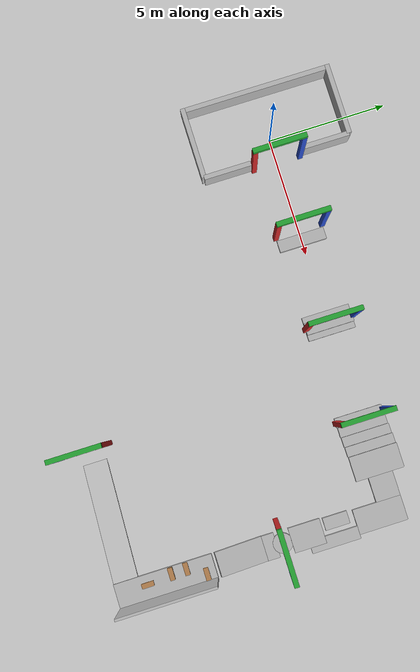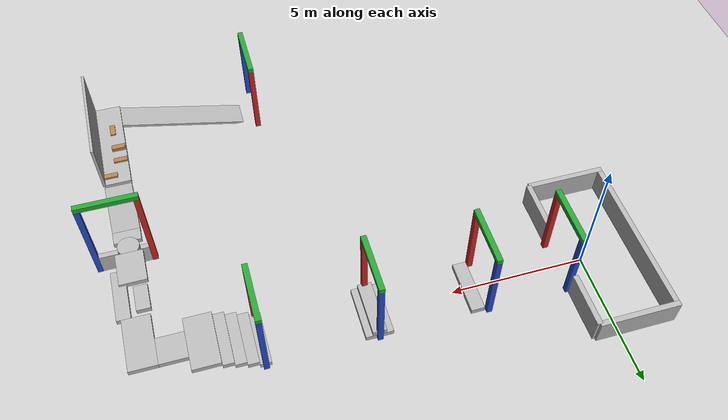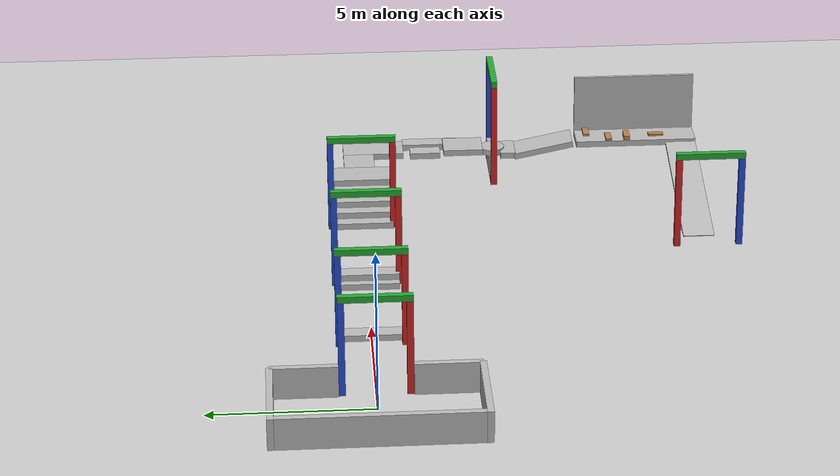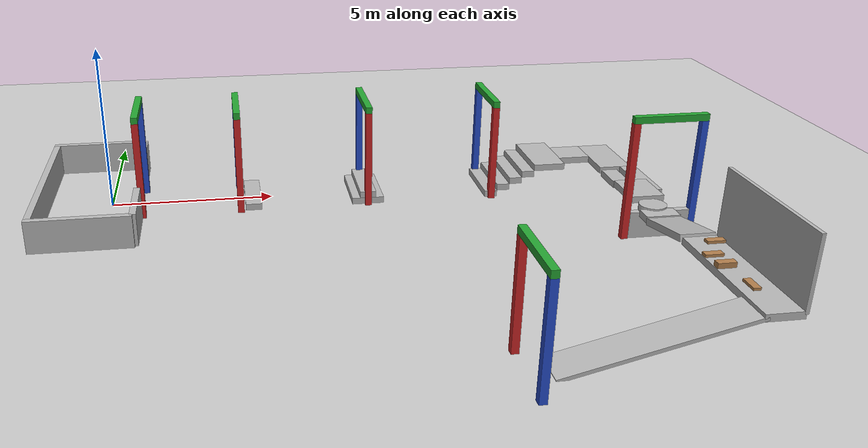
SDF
<?xml version='1.0'?>
<sdf version='1.3'>
  <world name='default'>
    <scene>
      <ambient>0.3 0.3 0.3 1.0</ambient>
    </scene>

    <!-- Light Source -->
    <light type="directional" name="sun">
      <cast_shadows>true</cast_shadows>

      <pose>0 0 100 0 0 0</pose>
      <diffuse>0.9 0.9 0.9 1</diffuse>
      <specular>0.1 0.1 0.1 1</specular>

      <attenuation>
        <range>1000</range>
        <constant>0.9</constant>
        <linear>0.01</linear>
        <quadratic>0.001</quadratic>
      </attenuation>

      <direction>-0.2 0.0 -1.0</direction>
    </light>

    <!-- Point Light Source -->
    <light type="point" name="light_bulb">
      <cast_shadows>false</cast_shadows>

      <pose>7.5 -7 5 0 0 0</pose>
      <diffuse>0.5 0.5 0.5 1</diffuse>
      <specular>0.0 0.0 0.0 1</specular>

      <attenuation>
        <range>80</range>
        <constant>0.9</constant>
        <linear>0.01</linear>
        <quadratic>0.001</quadratic>
      </attenuation>
    </light>

    <!-- A ground plane -->
    <include>
      <uri>model://ground_plane</uri>
      <pose>0 0 0 0 0 0</pose>
    </include>

    <model name="starting_pen">
      <static>true</static>
      <pose>-2.0 0 0.5 0 0 0</pose>
      <link name="link">
        <collision name="back_collision">
          <geometry>
            <box>
              <size>0.2 6 1.0</size>
            </box>
          </geometry>
        </collision>
        <visual name="back_visual">
          <geometry>
            <box>
              <size>0.2 6 1.0</size>
            </box>
          </geometry>
          <material>
            <script>
              <uri>file://media/materials/scripts/drc_qual.material</uri>
              <name>DRCQual/WarningWall</name>
            </script>
          </material>
        </visual>

        <collision name="left_collision">
          <pose>1.4 -3.1 0 0 0 0</pose>
          <geometry>
            <box>
              <size>3 0.2 1.0</size>
            </box>
          </geometry>
        </collision>
        <visual name="left_visual_lower">
          <pose>1.4 -3.1 0.0 0 0 0</pose>
          <geometry>
            <box>
              <size>3 0.2 1.0</size>
            </box>
          </geometry>
          <material>
            <script>
              <uri>file://media/materials/scripts/drc_qual.material</uri>
              <name>DRCQual/WarningWall</name>
            </script>
          </material>
        </visual>

        <collision name="right_collision">
          <pose>1.4 3.1 0 0 0 0</pose>
          <geometry>
            <box>
              <size>3 0.2 1.0</size>
            </box>
          </geometry>
        </collision>
        <visual name="right_visual">
          <pose>1.4 3.1 0 0 0 0</pose>
          <geometry>
            <box>
              <size>3 0.2 1.0</size>
            </box>
          </geometry>
          <material>
            <script>
              <uri>file://media/materials/scripts/drc_qual.material</uri>
              <name>DRCQual/WarningWall</name>
            </script>
          </material>
        </visual>

        <collision name="front_right_collision">
          <pose>2.9 2.1 0 0 0 0</pose>
          <geometry>
            <box>
              <size>0.2 2.0 1.0</size>
            </box>
          </geometry>
        </collision>
        <visual name="front_right_visual">
          <pose>2.9 2.1 0 0 0 0</pose>
          <geometry>
            <box>
              <size>0.2 2.0 1.0</size>
            </box>
          </geometry>
          <material>
            <script>
              <uri>file://media/materials/scripts/drc_qual.material</uri>
              <name>DRCQual/WarningWall</name>
            </script>
          </material>
        </visual>

        <collision name="front_left_collision">
          <pose>2.9 -2.1 0 0 0 0</pose>
          <geometry>
            <box>
              <size>0.2 2.0 1.0</size>
            </box>
          </geometry>
        </collision>
        <visual name="front_left_visual">
          <pose>2.9 -2.1 0 0 0 0</pose>
          <geometry>
            <box>
              <size>0.2 2.0 1.0</size>
            </box>
          </geometry>
          <material>
            <script>
              <uri>file://media/materials/scripts/drc_qual.material</uri>
              <name>DRCQual/WarningWall</name>
            </script>
          </material>
        </visual>

      </link>
    </model>

    <!-- Start: Gate 0 -->
    <include>
      <name>gate_0</name>
      <uri>model://gate</uri>
      <pose>1 0 1.0 0 0 0</pose>
    </include>

    <!-- Gate 1 -->
    <include>
      <name>gate_1</name>
      <uri>model://gate</uri>
      <pose>4 0 1.0 0 0 0</pose>
    </include>

    <!-- Gate 2 -->
    <include>
      <name>gate_2</name>
      <uri>model://gate</uri>
      <pose>8 0 1.0 0 0 0</pose>
    </include>

    <!-- Gate 3 -->
    <include>
      <name>gate_3</name>
      <uri>model://gate</uri>
      <pose>12 0 1.0 0 0 0</pose>
    </include>

    <!-- Gate 4 -->
    <include>
      <name>gate_4</name>
      <uri>model://gate</uri>
      <pose>16 -4.5 1.5 0 0 -1.5707</pose>
    </include>

    <!-- Gate 5 -->
    <include>
      <name>gate_5</name>
      <uri>model://gate</uri>
      <pose>10 -11 1.0 0 0 3.1415</pose>
    </include>

    <!-- Gate 4 Block -->
    <model name="gate4_block">
      <static>true</static>
      <pose>16 -4.5 0.4 0 0 0</pose>
      <link name="link">
        <collision name="collision">
          <geometry>
            <box>
              <size>1.8 0.2 .8</size>
            </box>
          </geometry>
        </collision>
        <visual name="visual">
          <geometry>
            <box>
              <size>1.8 0.2 .8</size>
            </box>
          </geometry>
        </visual>
      </link>
    </model>

    <!-- Box Obstacle 1 -->
    <model name="box_obstacle_1">
      <static>true</static>
      <pose>4.4 0 0.1 0 0 0</pose>
      <link name="link">
        <collision name="collision">
          <geometry>
            <box>
              <size>0.5 2.0 0.2</size>
            </box>
          </geometry>
        </collision>
        <visual name="visual">
          <pose>0 0 0 0 0 0</pose>
          <geometry>
            <box>
              <size>0.5 2.0 0.2</size>
            </box>
          </geometry>
          <material>
            <script>
              <uri>file://media/materials/scripts/drc_qual.material</uri>
              <name>DRCQual/MetalPlate</name>
            </script>
          </material>
        </visual>
      </link>
    </model>

    <!-- Box Obstacle 2 -->
    <model name="box_obstacle_2">
      <static>true</static>
      <pose>8 0 0.1 0 0 0</pose>
      <link name="link">
        <collision name="collision">
          <geometry>
            <box>
              <size>1.0 2.0 0.2</size>
            </box>
          </geometry>
        </collision>
        <visual name="visual">
          <pose>0 0 0 0 0 0</pose>
          <geometry>
            <box>
              <size>1.0 2.0 0.2</size>
            </box>
          </geometry>
          <material>
            <script>
              <uri>file://media/materials/scripts/drc_qual.material</uri>
              <name>DRCQual/MetalPlate</name>
            </script>
          </material>
        </visual>

        <collision name="collision_step">
          <pose>0 0 0.20 0 0 0</pose>
          <geometry>
            <box>
              <size>0.5 2.0 0.2</size>
            </box>
          </geometry>
        </collision>
        <visual name="visual_step">
          <pose>0 0 0.20 0 0 0</pose>
          <geometry>
            <box>
              <size>0.5 2.0 0.2</size>
            </box>
          </geometry>
          <material>
            <script>
              <uri>file://media/materials/scripts/drc_qual.material</uri>
              <name>DRCQual/MetalPlate</name>
            </script>
          </material>
        </visual>

      </link>
    </model>

    <!-- stairs 1 -->
    <model name="stairs_1">
      <static>true</static>
      <pose>12 0 0.1 0 0 0</pose>
      <link name="link">
        <collision name="collision_step_1">
          <geometry>
            <box>
              <size>0.4 2.0 0.2</size>
            </box>
          </geometry>
        </collision>
        <visual name="visual_step_1">
          <geometry>
            <box>
              <size>0.4 2.0 0.2</size>
            </box>
          </geometry>
          <material>
            <script>
              <uri>file://media/materials/scripts/drc_qual.material</uri>
              <name>DRCQual/MetalPlate</name>
            </script>
          </material>
        </visual>

        <collision name="collision_step_2">
          <pose>0.4 0 0.2 0 0 0</pose>
          <geometry>
            <box>
              <size>0.4 2.0 0.2</size>
            </box>
          </geometry>
        </collision>
        <visual name="visual_step_2">
          <pose>0.4 0 0.2 0 0 0</pose>
          <geometry>
            <box>
              <size>0.4 2.0 0.2</size>
            </box>
          </geometry>
          <material>
            <script>
              <uri>file://media/materials/scripts/drc_qual.material</uri>
              <name>DRCQual/MetalPlate</name>
            </script>
          </material>
        </visual>

        <collision name="collision_step_3">
          <pose>0.8 0 0.4 0 0 0</pose>
          <geometry>
            <box>
              <size>0.4 2.0 0.2</size>
            </box>
          </geometry>
        </collision>
        <visual name="visual_step_3">
          <pose>0.8 0 0.4 0 0 0</pose>
          <geometry>
            <box>
              <size>0.4 2.0 0.2</size>
            </box>
          </geometry>
          <material>
            <script>
              <uri>file://media/materials/scripts/drc_qual.material</uri>
              <name>DRCQual/MetalPlate</name>
            </script>
          </material>
        </visual>

        <collision name="collision_step_4">
          <pose>1.2 0 0.6 0 0 0</pose>
          <geometry>
            <box>
              <size>0.4 2.0 0.2</size>
            </box>
          </geometry>
        </collision>
        <visual name="visual_step_4">
          <pose>1.2 0 0.6 0 0 0</pose>
          <geometry>
            <box>
              <size>0.4 2.0 0.2</size>
            </box>
          </geometry>
          <material>
            <script>
              <uri>file://media/materials/scripts/drc_qual.material</uri>
              <name>DRCQual/MetalPlate</name>
            </script>
          </material>
        </visual>
      </link>
    </model>

    <!-- landing -->
    <model name="landing">
      <static>true</static>
      <pose>13.9 0 0.9 0 0 0</pose>
      <link name="link">
        <collision name="collision_1">
          <geometry>
            <box>
              <size>1.0 2.0 0.2</size>
            </box>
          </geometry>
        </collision>
        <visual name="visual_1">
          <geometry>
            <box>
              <size>1.0 2.0 0.2</size>
            </box>
          </geometry>
          <material>
            <script>
              <uri>file://media/materials/scripts/drc_qual.material</uri>
              <name>DRCQual/MetalPlate</name>
            </script>
          </material>
        </visual>

        <collision name="collision_2">
          <pose>1.0 0 0 0 0 0</pose>
          <geometry>
            <box>
              <size>1.0 1.0 0.2</size>
            </box>
          </geometry>
        </collision>
        <visual name="visual_2">
          <pose>1.0 0 0 0 0 0</pose>
          <geometry>
            <box>
              <size>1.0 1.0 0.2</size>
            </box>
          </geometry>
          <material>
            <script>
              <uri>file://media/materials/scripts/drc_qual.material</uri>
              <name>DRCQual/MetalPlate</name>
            </script>
          </material>
        </visual>

        <collision name="collision_3">
          <pose>2.0 -0.5 0 0 0 0</pose>
          <geometry>
            <box>
              <size>1.0 2.0 0.2</size>
            </box>
          </geometry>
        </collision>
        <visual name="visual_3">
          <pose>2.0 -0.5 0 0 0 0</pose>
          <geometry>
            <box>
              <size>1.0 2.0 0.2</size>
            </box>
          </geometry>
          <material>
            <script>
              <uri>file://media/materials/scripts/drc_qual.material</uri>
              <name>DRCQual/MetalPlate</name>
            </script>
          </material>
        </visual>
      </link>
    </model>

    <model name="platform_1">
      <static>true</static>
      <pose>15.6 -2.23 0.9 0 0 0</pose>
      <link name="link">
        <collision name="collision">
          <geometry>
            <box>
              <size>0.5 1.0 0.2</size>
            </box>
          </geometry>
        </collision>
        <visual name="visual">
          <geometry>
            <box>
              <size>0.5 1.0 0.2</size>
            </box>
          </geometry>
          <material>
            <script>
              <uri>file://media/materials/scripts/drc_qual.material</uri>
              <name>DRCQual/MetalPlate</name>
            </script>
          </material>
        </visual>
      </link>
    </model>

    <model name="platform_1a">
      <static>true</static>
      <pose>16.3 -2.5 0.9 0 0 0</pose>
      <link name="link">
        <collision name="collision">
          <geometry>
            <box>
              <size>0.5 2.0 0.2</size>
            </box>
          </geometry>
        </collision>
        <visual name="visual">
          <geometry>
            <box>
              <size>0.5 2.0 0.2</size>
            </box>
          </geometry>
          <material>
            <script>
              <uri>file://media/materials/scripts/drc_qual.material</uri>
              <name>DRCQual/MetalPlate</name>
            </script>
          </material>
        </visual>
      </link>
    </model>

    <model name="platform_2">
      <static>true</static>
      <pose>15.8 -3.5 1.0 0 0 0</pose>
      <link name="link">
        <collision name="collision">
          <geometry>
            <box>
              <size>1.0 1.3 0.2</size>
            </box>
          </geometry>
        </collision>
        <visual name="visual">
          <geometry>
            <box>
              <size>1.0 1.3 0.2</size>
            </box>
          </geometry>
          <material>
            <script>
              <uri>file://media/materials/scripts/drc_qual.material</uri>
              <name>DRCQual/MetalPlate</name>
            </script>
          </material>
        </visual>
      </link>
    </model>

    <!-- cylindrical platform -->
    <model name="platform_3">
      <static>true</static>
      <pose>15.8 -4.5 0.9 0 0 0</pose>
      <link name="link">
        <collision name="collision">
          <geometry>
            <cylinder>
              <radius>0.4</radius>
              <length>0.2</length>
            </cylinder>
          </geometry>
        </collision>
        <visual name="visual">
          <geometry>
            <cylinder>
              <radius>0.4</radius>
              <length>0.2</length>
            </cylinder>
          </geometry>
          <material>
            <script>
              <uri>file://media/materials/scripts/drc_qual.material</uri>
              <name>DRCQual/MetalPlate</name>
            </script>
          </material>
        </visual>
      </link>
    </model>

    <model name="platform_4">
      <static>true</static>
      <pose>15.8 -5.0 0.85 0 0 0</pose>
      <link name="link">
        <collision name="collision">
          <geometry>
            <box>
              <size>1.0 0.5 0.2</size>
            </box>
          </geometry>
        </collision>
        <visual name="visual">
          <geometry>
            <box>
              <size>1.0 0.5 0.2</size>
            </box>
          </geometry>
          <material>
            <script>
              <uri>file://media/materials/scripts/drc_qual.material</uri>
              <name>DRCQual/MetalPlate</name>
            </script>
          </material>
        </visual>
      </link>
    </model>

    <model name="ramp_up">
      <static>true</static>
      <pose>15.8 -6.2 1.0 -0.2 0 0</pose>
      <link name="link">
        <collision name="collision">
          <geometry>
            <box>
              <size>1.0 2.0 0.2</size>
            </box>
          </geometry>
        </collision>
        <visual name="visual">
          <geometry>
            <box>
              <size>1.0 2.0 0.2</size>
            </box>
          </geometry>
          <material>
            <script>
              <uri>file://media/materials/scripts/drc_qual.material</uri>
              <name>DRCQual/MetalPlate</name>
            </script>
          </material>
        </visual>
      </link>
    </model>

    <model name="platform_6">
      <static>true</static>
      <pose>15.8 -9.3 1.18 0 0 0</pose>
      <link name="link">
        <collision name="collision">
          <geometry>
            <box>
              <size>1.0 4.0 0.2</size>
            </box>
          </geometry>
        </collision>
        <visual name="visual">
          <geometry>
            <box>
              <size>1.0 4.0 0.2</size>
            </box>
          </geometry>
          <material>
            <script>
              <uri>file://media/materials/scripts/drc_qual.material</uri>
              <name>DRCQual/MetalPlate</name>
            </script>
          </material>
        </visual>
      </link>
    </model>

    <model name="wall_6">
      <static>true</static>
      <pose>16.3 -9.3 2.2 0 0 0</pose>
      <link name="link">
        <collision name="collision">
          <geometry>
            <box>
              <size>0.1 4.0 2.0</size>
            </box>
          </geometry>
        </collision>
        <visual name="visual">
          <geometry>
            <box>
              <size>0.1 4.0 2.0</size>
            </box>
          </geometry>
          <material>
            <script>
              <uri>file://media/materials/scripts/drc_qual.material</uri>
              <name>DRCQual/MetalPlate</name>
            </script>
          </material>
        </visual>
      </link>
    </model>

    <model name="tunnel_obstacle_1">
      <static>true</static>
      <pose>16.0 -7.67 1.31 0 0 0</pose>
      <link name="link">
        <collision name="collision">
          <geometry>
            <box>
              <size>0.5 0.2 0.1</size>
            </box>
          </geometry>
        </collision>
        <visual name="visual">
          <geometry>
            <box>
              <size>0.5 0.2 0.1</size>
            </box>
          </geometry>
          <material>
            <script>
              <uri>file://media/materials/scripts/drc_qual.material</uri>
              <name>DRCQual/Wood</name>
            </script>
          </material>
        </visual>
      </link>
    </model>

    <model name="tunnel_obstacle_2">
      <static>true</static>
      <pose>15.57 -8.39 1.31 0 0 0</pose>
      <link name="link">
        <collision name="collision">
          <geometry>
            <box>
              <size>0.5 0.2 0.1</size>
            </box>
          </geometry>
        </collision>
        <visual name="visual">
          <geometry>
            <box>
              <size>0.5 0.2 0.1</size>
            </box>
          </geometry>
          <material>
            <script>
              <uri>file://media/materials/scripts/drc_qual.material</uri>
              <name>DRCQual/Wood</name>
            </script>
          </material>
        </visual>
      </link>
    </model>

    <model name="tunnel_obstacle_3">
      <static>true</static>
      <pose>15.57 -9.0 1.33 0 0 0</pose>
      <link name="link">
        <collision name="collision">
          <geometry>
            <box>
              <size>0.5 0.2 0.2</size>
            </box>
          </geometry>
        </collision>
        <visual name="visual">
          <geometry>
            <box>
              <size>0.5 0.2 0.2</size>
            </box>
          </geometry>
          <material>
            <script>
              <uri>file://media/materials/scripts/drc_qual.material</uri>
              <name>DRCQual/Wood</name>
            </script>
          </material>
        </visual>
      </link>
    </model>

    <model name="tunnel_obstacle_4">
      <static>true</static>
      <pose>15.7 -10 1.3 0 0 1.5707</pose>
      <link name="link">
        <collision name="collision">
          <geometry>
            <box>
              <size>0.5 0.2 0.1</size>
            </box>
          </geometry>
        </collision>
        <visual name="visual">
          <geometry>
            <box>
              <size>0.5 0.2 0.1</size>
            </box>
          </geometry>
          <material>
            <script>
              <uri>file://media/materials/scripts/drc_qual.material</uri>
              <name>DRCQual/Wood</name>
            </script>
          </material>
        </visual>
      </link>
    </model>

    <model name="ramp_down">
      <static>true</static>
      <pose>13 -10.8 0.56 0 -0.244 0</pose>
      <link name="link">
        <collision name="collision">
          <geometry>
            <box>
              <size>5.0 1.0 0.1</size>
            </box>
          </geometry>
        </collision>
        <visual name="visual">
          <geometry>
            <box>
              <size>5.0 1.0 0.1</size>
            </box>
          </geometry>
          <material>
            <script>
              <uri>file://media/materials/scripts/drc_qual.material</uri>
              <name>DRCQual/MetalPlateRamp</name>
            </script>
          </material>
        </visual>
      </link>
    </model>
  </world>
</sdf>

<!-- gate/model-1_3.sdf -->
<sdf version="1.3">

  <model name="gate">
    <static>true</static>
    <pose>0 0 2.0 0 0 0</pose>
    <link name="link">
      <collision name="right_collision">
        <pose>0 -1.0 0 0 0 0</pose>
        <geometry>
          <box>
            <size>0.2 0.2 4.0</size>
          </box>
        </geometry>
      </collision>
      <visual name="right_visual">
        <pose>0 -1.0 0 0 0 0</pose>
        <geometry>
          <box>
            <size>0.2 0.2 4.0</size>
          </box>
        </geometry>
        <material>
          <script>
            <uri>model://gate/materials/scripts/gate.material</uri>
            <uri>model://gate/materials/textures</uri>
            <name>vrc/red_gate</name>
          </script>
        </material>
      </visual>

      <collision name="left_collision">
        <pose>0 1.0 0 0 0 0</pose>
        <geometry>
          <box>
            <size>0.2 0.2 4.0</size>
          </box>
        </geometry>
      </collision>
      <visual name="left_visual">
        <pose>0 1.0 0 0 0 0</pose>
        <geometry>
          <box>
            <size>0.2 0.2 4.0</size>
          </box>
        </geometry>
        <material>
          <script>
            <uri>model://gate/materials/scripts/gate.material</uri>
            <uri>model://gate/materials/textures</uri>
            <name>vrc/blue_gate</name>
          </script>
        </material>
      </visual>

      <collision name="top_collision">
        <pose>0 0 2.1 0 0 0</pose>
        <geometry>
          <box>
            <size>0.2 2.2 0.2</size>
          </box>
        </geometry>
      </collision>
      <visual name="top_visual">
        <pose>0 0 2.1 0 0 0</pose>
        <geometry>
          <box>
            <size>0.2 2.2 0.2</size>
          </box>
        </geometry>
        <material>
          <script>
            <uri>model://gate/materials/scripts/gate.material</uri>
            <uri>model://gate/materials/textures</uri>
            <name>vrc/green_gate</name>
          </script>
        </material>
      </visual>
    </link>
  </model>
</sdf>
